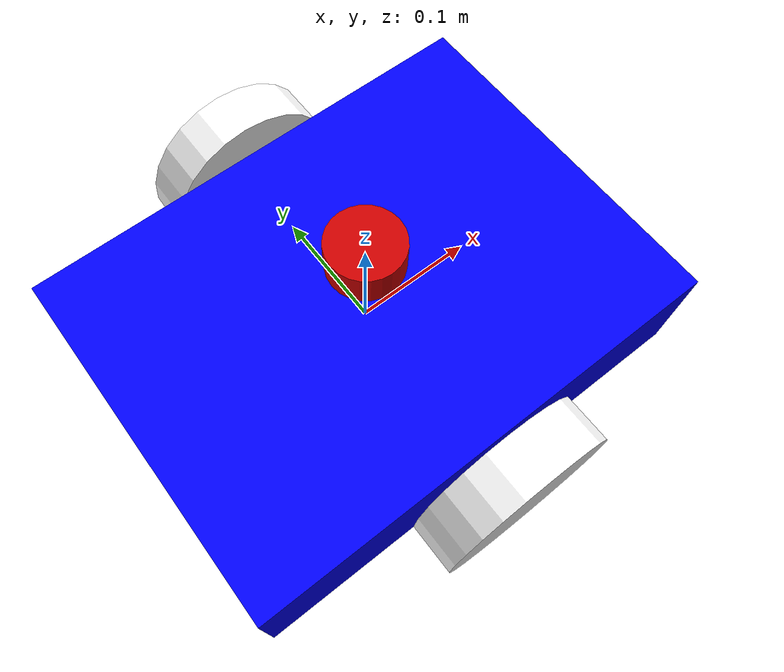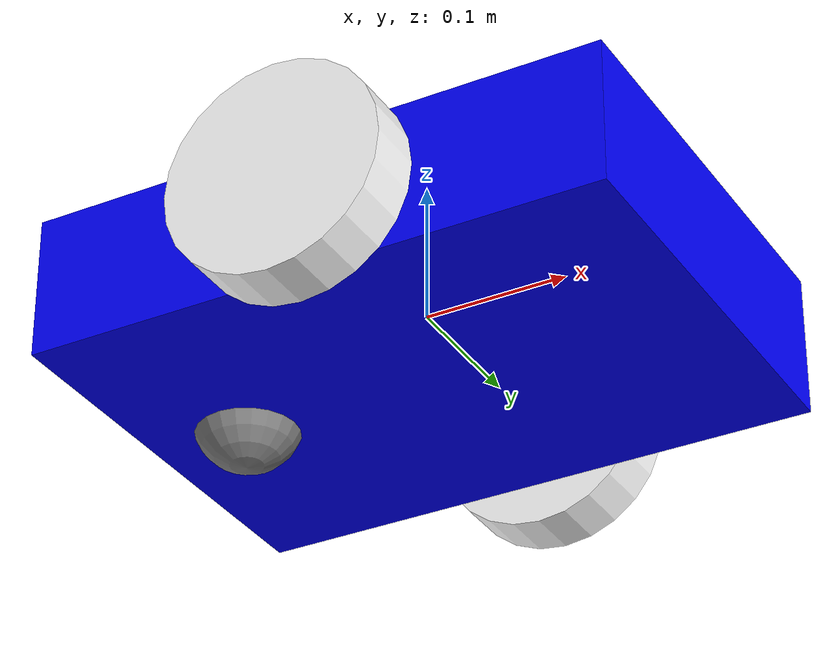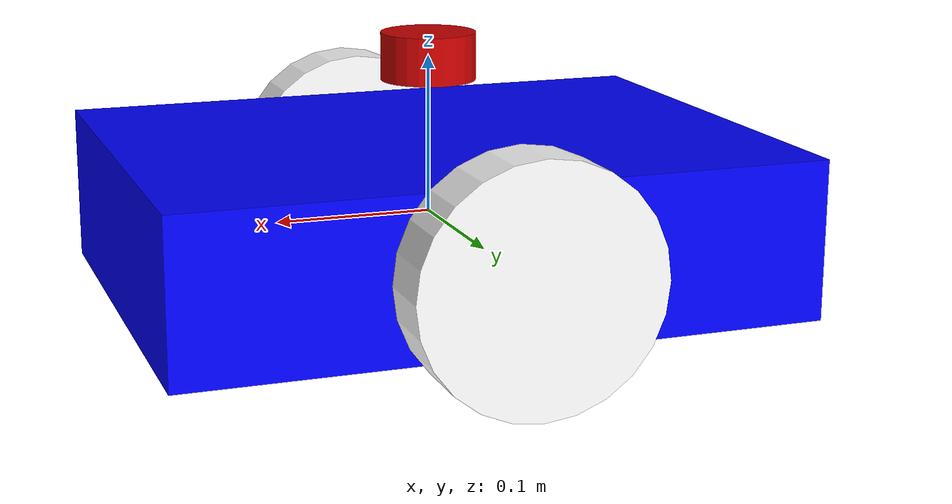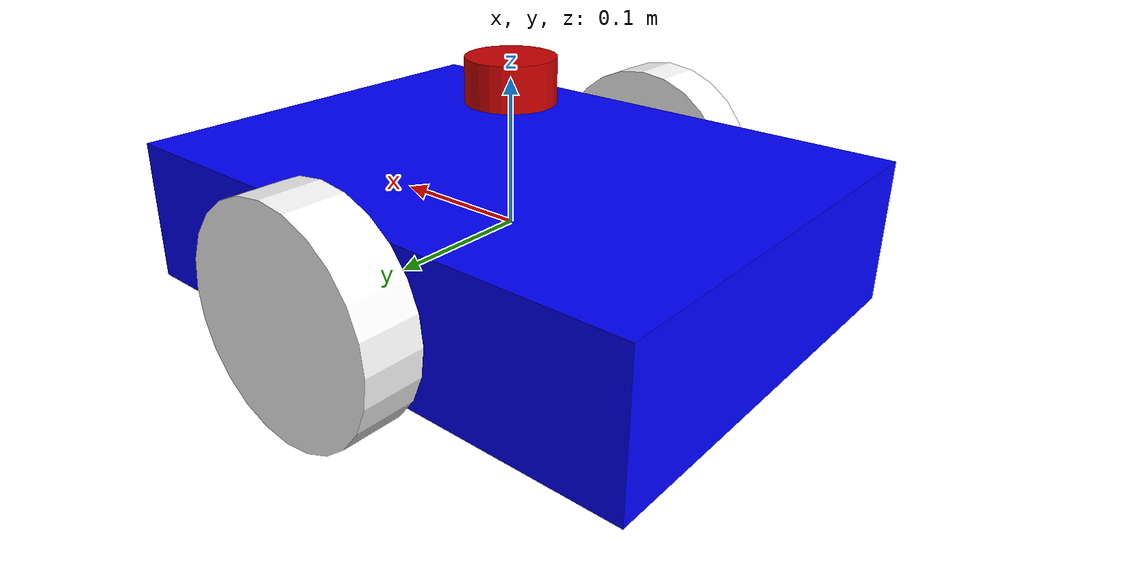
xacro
<?xml version="1.0"?>
<robot xmlns:xacro="http://www.ros.org/wiki/xacro" name="my_robot">

    <!-- Constants -->
    <xacro:property name="chassis_mass" value="10.0"/>
    <xacro:property name="wheel_mass" value="0.5"/>
    <xacro:property name="caster_mass" value="0.1"/>
    <xacro:property name="chassis_length" value="0.4"/>
    <xacro:property name="chassis_width" value="0.3"/>
    <xacro:property name="chassis_height" value="0.1"/>
    <xacro:property name="wheel_radius" value="0.075"/>
    <xacro:property name="wheel_thickness" value="0.04"/>
    <xacro:property name="wheel_separation" value="0.35"/>
    <xacro:property name="base_height" value="${chassis_height}"/>

    <!-- Base Link (Chassis) -->
    <link name="base_link">
        <visual>
            <geometry>
                <box size="${chassis_length} ${chassis_width} ${chassis_height}"/>
            </geometry>
            <material name="blue">
                <color rgba="0.0 0.0 1.0 1.0"/>
            </material>
        </visual>
        <collision>
            <geometry>
                <box size="${chassis_length} ${chassis_width} ${chassis_height}"/>
            </geometry>
        </collision>
        <inertial>
            <mass value="${chassis_mass}"/>
            <inertia ixx="0.1" ixy="0.0" ixz="0.0" iyy="0.1" iyz="0.0" izz="0.1"/>
        </inertial>
    </link>

    <!-- Right Wheel -->
    <link name="right_wheel_link">
        <visual>
            <geometry>
                <cylinder radius="${wheel_radius}" length="${wheel_thickness}"/>
            </geometry>
            <origin rpy="1.5707 0 0" xyz="0 0 0"/>
            <material name="white">
                <color rgba="1.0 1.0 1.0 1.0"/>
            </material>
        </visual>
        <collision>
            <geometry>
                <cylinder radius="${wheel_radius}" length="${wheel_thickness}"/>
            </geometry>
            <origin rpy="1.5707 0 0" xyz="0 0 0"/>
        </collision>
        <inertial>
            <mass value="${wheel_mass}"/>
            <inertia ixx="0.001" ixy="0.0" ixz="0.0" iyy="0.001" iyz="0.0" izz="0.001"/>
        </inertial>
    </link>

    <!-- Left Wheel -->
    <link name="left_wheel_link">
        <visual>
            <geometry>
                <cylinder radius="${wheel_radius}" length="${wheel_thickness}"/>
            </geometry>
            <origin rpy="1.5707 0 0" xyz="0 0 0"/>
            <material name="white"/>
        </visual>
        <collision>
            <geometry>
                <cylinder radius="${wheel_radius}" length="${wheel_thickness}"/>
            </geometry>
             <origin rpy="1.5707 0 0" xyz="0 0 0"/>
        </collision>
        <inertial>
            <mass value="${wheel_mass}"/>
            <inertia ixx="0.001" ixy="0.0" ixz="0.0" iyy="0.001" iyz="0.0" izz="0.001"/>
        </inertial>
    </link>

    <!-- Caster Wheel -->
    <link name="caster_wheel_link">
        <visual>
            <geometry>
                <sphere radius="${wheel_radius / 2}"/>
            </geometry>
            <material name="grey">
                 <color rgba="0.5 0.5 0.5 1.0"/>
            </material>
        </visual>
        <collision>
            <geometry>
                 <sphere radius="${wheel_radius / 2}"/>
            </geometry>
        </collision>
         <inertial>
            <mass value="${caster_mass}"/>
            <inertia ixx="0.0001" ixy="0.0" ixz="0.0" iyy="0.0001" iyz="0.0" izz="0.0001"/>
        </inertial>
    </link>

    <link name="laser_frame">
    <visual>
      <geometry>
        <cylinder length="0.03" radius="0.03"/>
      </geometry>
      <material name="red">
        <color rgba="0.8 0.0 0.0 1.0"/>
      </material>
    </visual>
  </link>

  <joint name="laser_joint" type="fixed">
    <parent link="base_link"/>
    <child link="laser_frame"/>
    <origin xyz="0 0 ${base_height/2 + 0.05}"/>
  </joint>

  <gazebo reference="laser_frame">
    <sensor name="laser" type="ray">
      <always_on>true</always_on>
      <visualize>true</visualize>
      <update_rate>10.0</update_rate>
      <ray>
        <scan>
          <horizontal>
            <samples>360</samples>
            <resolution>1</resolution>
            <min_angle>-3.14</min_angle>
            <max_angle>3.14</max_angle>
          </horizontal>
        </scan>
        <range>
          <min>0.1</min>
          <max>5.0</max>
          <resolution>0.01</resolution>
        </range>
      </ray>
      <plugin name="gazebo_ros_lidar_controller" filename="libgazebo_ros_ray_sensor.so">
        <ros>
          <argument>~/out:=scan</argument>
          <remapping>~/out:=/scan</remapping>
        </ros>
        <output_type>sensor_msgs/LaserScan</output_type>
        <frame_name>laser_frame</frame_name>
      </plugin>
    </sensor>
  </gazebo>

    <!-- Joints -->
    <joint name="right_wheel_joint" type="continuous">
        <parent link="base_link"/>
        <child link="right_wheel_link"/>
        <origin xyz="0 ${-wheel_separation/2} 0" rpy="0 0 0"/>
        <axis xyz="0 1 0"/>
    </joint>

    <joint name="left_wheel_joint" type="continuous">
        <parent link="base_link"/>
        <child link="left_wheel_link"/>
        <origin xyz="0 ${wheel_separation/2} 0" rpy="0 0 0"/>
        <axis xyz="0 1 0"/>
    </joint>

    <joint name="caster_wheel_joint" type="fixed">
        <parent link="base_link"/>
        <child link="caster_wheel_link"/>
        <origin xyz="${-chassis_length/3} 0 ${-wheel_radius/2}" rpy="0 0 0"/>
    </joint>

    <!-- Import ros2_control description -->
    <xacro:include filename="robot.ros2_control.xacro" />

</robot>
